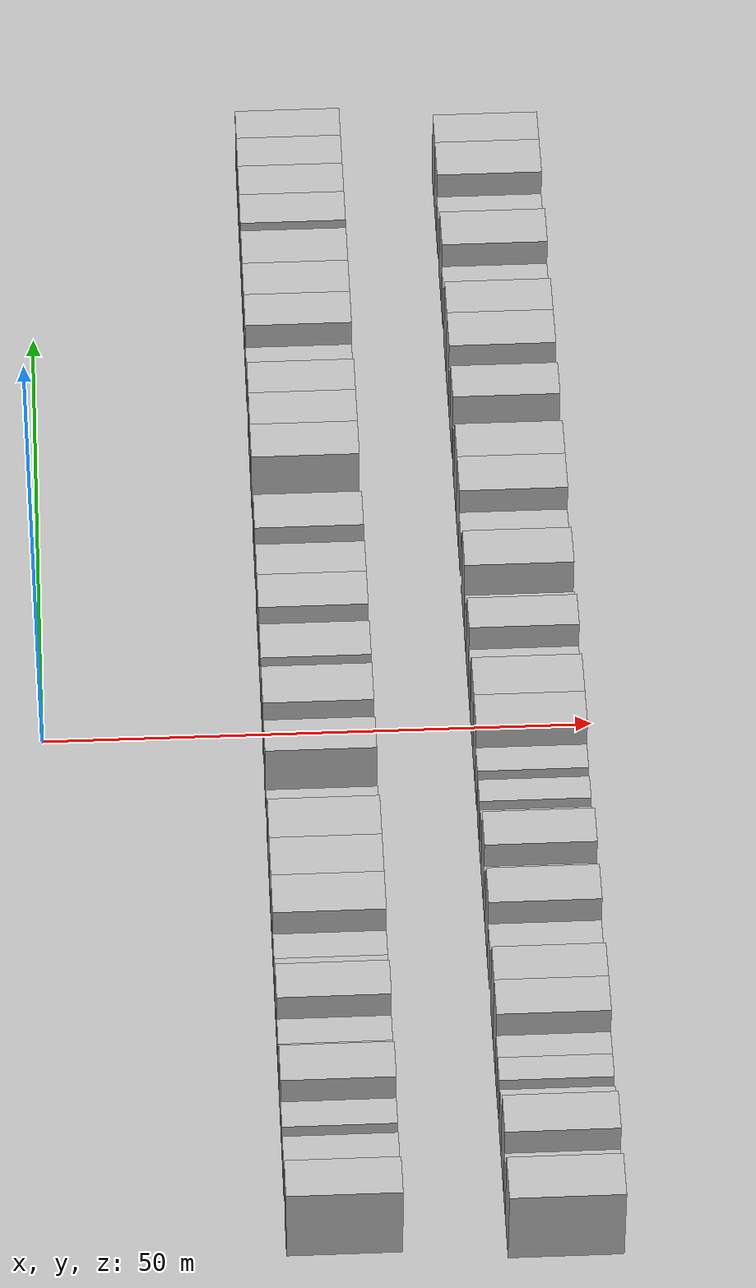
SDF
<sdf version="1.6">
 <world name="default">
  <include><name>ground_plane_1</name><uri>model://HANNAS_ground_plane</uri></include>
  <include>
   <name>ground_plane_2</name>
   <uri>model://HANNAS_ground_plane</uri>
   <pose>100 0 0  0 0 0</pose>
  </include>
  <model name="building_33">
   <static>1</static>
   <pose>25.0000 -57.2095 0 0.000000 0.000000 0.000000</pose>
   <link name="link">
    <pose>0 0 4.50 0 0 0</pose>
    <collision name="collision"><geometry><box><size>10.0000 3.8478 9.0000</size></box></geometry></collision>
    <visual name="visual">
     <cast_shadows>0</cast_shadows>
     <geometry><box><size>10.0000 3.8478 9.0000</size></box></geometry>
     <material>
      <script>
       <uri>model://HANNAS_wall/materials/scripts</uri>
       <uri>model://HANNAS_wall/materials/textures</uri>
       <name>vrc/HANNAS_wall</name>
      </script>
     </material>
    </visual>
   </link>
  </model>
  <model name="building_34">
   <static>1</static>
   <pose>25.0000 -51.8586 0 0.000000 0.000000 0.000000</pose>
   <link name="link">
    <pose>0 0 3.00 0 0 0</pose>
    <collision name="collision"><geometry><box><size>10.0000 2.8540 6.0000</size></box></geometry></collision>
    <visual name="visual">
     <cast_shadows>0</cast_shadows>
     <geometry><box><size>10.0000 2.8540 6.0000</size></box></geometry>
     <material>
      <script>
       <uri>model://HANNAS_wall/materials/scripts</uri>
       <uri>model://HANNAS_wall/materials/textures</uri>
       <name>vrc/HANNAS_wall</name>
      </script>
     </material>
    </visual>
   </link>
  </model>
  <model name="building_35">
   <static>1</static>
   <pose>25.0000 -48.0575 0 0.000000 0.000000 0.000000</pose>
   <link name="link">
    <pose>0 0 3.00 0 0 0</pose>
    <collision name="collision"><geometry><box><size>10.0000 2.7484 6.0000</size></box></geometry></collision>
    <visual name="visual">
     <cast_shadows>0</cast_shadows>
     <geometry><box><size>10.0000 2.7484 6.0000</size></box></geometry>
     <material>
      <script>
       <uri>model://HANNAS_wall/materials/scripts</uri>
       <uri>model://HANNAS_wall/materials/textures</uri>
       <name>vrc/HANNAS_wall</name>
      </script>
     </material>
    </visual>
   </link>
  </model>
  <model name="building_36">
   <static>1</static>
   <pose>25.0000 -44.7523 0 0.000000 0.000000 0.000000</pose>
   <link name="link">
    <pose>0 0 4.50 0 0 0</pose>
    <collision name="collision"><geometry><box><size>10.0000 3.8620 9.0000</size></box></geometry></collision>
    <visual name="visual">
     <cast_shadows>0</cast_shadows>
     <geometry><box><size>10.0000 3.8620 9.0000</size></box></geometry>
     <material>
      <script>
       <uri>model://HANNAS_wall/materials/scripts</uri>
       <uri>model://HANNAS_wall/materials/textures</uri>
       <name>vrc/HANNAS_wall</name>
      </script>
     </material>
    </visual>
   </link>
  </model>
  <model name="building_37">
   <static>1</static>
   <pose>25.0000 -41.5908 0 0.000000 0.000000 0.000000</pose>
   <link name="link">
    <pose>0 0 3.00 0 0 0</pose>
    <collision name="collision"><geometry><box><size>10.0000 2.4609 6.0000</size></box></geometry></collision>
    <visual name="visual">
     <cast_shadows>0</cast_shadows>
     <geometry><box><size>10.0000 2.4609 6.0000</size></box></geometry>
     <material>
      <script>
       <uri>model://HANNAS_wall/materials/scripts</uri>
       <uri>model://HANNAS_wall/materials/textures</uri>
       <name>vrc/HANNAS_wall</name>
      </script>
     </material>
    </visual>
   </link>
  </model>
  <model name="building_38">
   <static>1</static>
   <pose>25.0000 -38.9807 0 0.000000 0.000000 0.000000</pose>
   <link name="link">
    <pose>0 0 3.00 0 0 0</pose>
    <collision name="collision"><geometry><box><size>10.0000 2.7594 6.0000</size></box></geometry></collision>
    <visual name="visual">
     <cast_shadows>0</cast_shadows>
     <geometry><box><size>10.0000 2.7594 6.0000</size></box></geometry>
     <material>
      <script>
       <uri>model://HANNAS_wall/materials/scripts</uri>
       <uri>model://HANNAS_wall/materials/textures</uri>
       <name>vrc/HANNAS_wall</name>
      </script>
     </material>
    </visual>
   </link>
  </model>
  <model name="building_39">
   <static>1</static>
   <pose>25.0000 -35.7096 0 0.000000 0.000000 0.000000</pose>
   <link name="link">
    <pose>0 0 4.50 0 0 0</pose>
    <collision name="collision"><geometry><box><size>10.0000 3.7827 9.0000</size></box></geometry></collision>
    <visual name="visual">
     <cast_shadows>0</cast_shadows>
     <geometry><box><size>10.0000 3.7827 9.0000</size></box></geometry>
     <material>
      <script>
       <uri>model://HANNAS_wall/materials/scripts</uri>
       <uri>model://HANNAS_wall/materials/textures</uri>
       <name>vrc/HANNAS_wall</name>
      </script>
     </material>
    </visual>
   </link>
  </model>
  <model name="building_40">
   <static>1</static>
   <pose>25.0000 -32.3342 0 0.000000 0.000000 0.000000</pose>
   <link name="link">
    <pose>0 0 3.00 0 0 0</pose>
    <collision name="collision"><geometry><box><size>10.0000 2.9682 6.0000</size></box></geometry></collision>
    <visual name="visual">
     <cast_shadows>0</cast_shadows>
     <geometry><box><size>10.0000 2.9682 6.0000</size></box></geometry>
     <material>
      <script>
       <uri>model://HANNAS_wall/materials/scripts</uri>
       <uri>model://HANNAS_wall/materials/textures</uri>
       <name>vrc/HANNAS_wall</name>
      </script>
     </material>
    </visual>
   </link>
  </model>
  <model name="building_41">
   <static>1</static>
   <pose>25.0000 -29.4740 0 0.000000 0.000000 0.000000</pose>
   <link name="link">
    <pose>0 0 3.00 0 0 0</pose>
    <collision name="collision"><geometry><box><size>10.0000 2.7522 6.0000</size></box></geometry></collision>
    <visual name="visual">
     <cast_shadows>0</cast_shadows>
     <geometry><box><size>10.0000 2.7522 6.0000</size></box></geometry>
     <material>
      <script>
       <uri>model://HANNAS_wall/materials/scripts</uri>
       <uri>model://HANNAS_wall/materials/textures</uri>
       <name>vrc/HANNAS_wall</name>
      </script>
     </material>
    </visual>
   </link>
  </model>
  <model name="building_42">
   <static>1</static>
   <pose>25.0000 -25.9594 0 0.000000 0.000000 0.000000</pose>
   <link name="link">
    <pose>0 0 4.50 0 0 0</pose>
    <collision name="collision"><geometry><box><size>10.0000 4.2771 9.0000</size></box></geometry></collision>
    <visual name="visual">
     <cast_shadows>0</cast_shadows>
     <geometry><box><size>10.0000 4.2771 9.0000</size></box></geometry>
     <material>
      <script>
       <uri>model://HANNAS_wall/materials/scripts</uri>
       <uri>model://HANNAS_wall/materials/textures</uri>
       <name>vrc/HANNAS_wall</name>
      </script>
     </material>
    </visual>
   </link>
  </model>
  <model name="building_43">
   <static>1</static>
   <pose>25.0000 -21.6875 0 0.000000 0.000000 0.000000</pose>
   <link name="link">
    <pose>0 0 4.50 0 0 0</pose>
    <collision name="collision"><geometry><box><size>10.0000 4.2667 9.0000</size></box></geometry></collision>
    <visual name="visual">
     <cast_shadows>0</cast_shadows>
     <geometry><box><size>10.0000 4.2667 9.0000</size></box></geometry>
     <material>
      <script>
       <uri>model://HANNAS_wall/materials/scripts</uri>
       <uri>model://HANNAS_wall/materials/textures</uri>
       <name>vrc/HANNAS_wall</name>
      </script>
     </material>
    </visual>
   </link>
  </model>
  <model name="building_44">
   <static>1</static>
   <pose>25.0000 -17.3307 0 0.000000 0.000000 0.000000</pose>
   <link name="link">
    <pose>0 0 4.50 0 0 0</pose>
    <collision name="collision"><geometry><box><size>10.0000 4.4470 9.0000</size></box></geometry></collision>
    <visual name="visual">
     <cast_shadows>0</cast_shadows>
     <geometry><box><size>10.0000 4.4470 9.0000</size></box></geometry>
     <material>
      <script>
       <uri>model://HANNAS_wall/materials/scripts</uri>
       <uri>model://HANNAS_wall/materials/textures</uri>
       <name>vrc/HANNAS_wall</name>
      </script>
     </material>
    </visual>
   </link>
  </model>
  <model name="building_45">
   <static>1</static>
   <pose>25.0000 -12.8297 0 0.000000 0.000000 0.000000</pose>
   <link name="link">
    <pose>0 0 3.00 0 0 0</pose>
    <collision name="collision"><geometry><box><size>10.0000 2.5550 6.0000</size></box></geometry></collision>
    <visual name="visual">
     <cast_shadows>0</cast_shadows>
     <geometry><box><size>10.0000 2.5550 6.0000</size></box></geometry>
     <material>
      <script>
       <uri>model://HANNAS_wall/materials/scripts</uri>
       <uri>model://HANNAS_wall/materials/textures</uri>
       <name>vrc/HANNAS_wall</name>
      </script>
     </material>
    </visual>
   </link>
  </model>
  <model name="building_46">
   <static>1</static>
   <pose>25.0000 -7.7306 0 0.000000 0.000000 0.000000</pose>
   <link name="link">
    <pose>0 0 4.50 0 0 0</pose>
    <collision name="collision"><geometry><box><size>10.0000 3.6432 9.0000</size></box></geometry></collision>
    <visual name="visual">
     <cast_shadows>0</cast_shadows>
     <geometry><box><size>10.0000 3.6432 9.0000</size></box></geometry>
     <material>
      <script>
       <uri>model://HANNAS_wall/materials/scripts</uri>
       <uri>model://HANNAS_wall/materials/textures</uri>
       <name>vrc/HANNAS_wall</name>
      </script>
     </material>
    </visual>
   </link>
  </model>
  <model name="building_47">
   <static>1</static>
   <pose>25.0000 -1.7272 0 0.000000 0.000000 0.000000</pose>
   <link name="link">
    <pose>0 0 4.50 0 0 0</pose>
    <collision name="collision"><geometry><box><size>10.0000 4.3636 9.0000</size></box></geometry></collision>
    <visual name="visual">
     <cast_shadows>0</cast_shadows>
     <geometry><box><size>10.0000 4.3636 9.0000</size></box></geometry>
     <material>
      <script>
       <uri>model://HANNAS_wall/materials/scripts</uri>
       <uri>model://HANNAS_wall/materials/textures</uri>
       <name>vrc/HANNAS_wall</name>
      </script>
     </material>
    </visual>
   </link>
  </model>
  <model name="building_48">
   <static>1</static>
   <pose>25.0000 3.4851 0 0.000000 0.000000 0.000000</pose>
   <link name="link">
    <pose>0 0 4.50 0 0 0</pose>
    <collision name="collision"><geometry><box><size>10.0000 4.0612 9.0000</size></box></geometry></collision>
    <visual name="visual">
     <cast_shadows>0</cast_shadows>
     <geometry><box><size>10.0000 4.0612 9.0000</size></box></geometry>
     <material>
      <script>
       <uri>model://HANNAS_wall/materials/scripts</uri>
       <uri>model://HANNAS_wall/materials/textures</uri>
       <name>vrc/HANNAS_wall</name>
      </script>
     </material>
    </visual>
   </link>
  </model>
  <model name="building_49">
   <static>1</static>
   <pose>25.0000 9.5124 0 0.000000 0.000000 0.000000</pose>
   <link name="link">
    <pose>0 0 4.50 0 0 0</pose>
    <collision name="collision"><geometry><box><size>10.0000 3.9933 9.0000</size></box></geometry></collision>
    <visual name="visual">
     <cast_shadows>0</cast_shadows>
     <geometry><box><size>10.0000 3.9933 9.0000</size></box></geometry>
     <material>
      <script>
       <uri>model://HANNAS_wall/materials/scripts</uri>
       <uri>model://HANNAS_wall/materials/textures</uri>
       <name>vrc/HANNAS_wall</name>
      </script>
     </material>
    </visual>
   </link>
  </model>
  <model name="building_50">
   <static>1</static>
   <pose>25.0000 13.3479 0 0.000000 0.000000 0.000000</pose>
   <link name="link">
    <pose>0 0 4.50 0 0 0</pose>
    <collision name="collision"><geometry><box><size>10.0000 3.6777 9.0000</size></box></geometry></collision>
    <visual name="visual">
     <cast_shadows>0</cast_shadows>
     <geometry><box><size>10.0000 3.6777 9.0000</size></box></geometry>
     <material>
      <script>
       <uri>model://HANNAS_wall/materials/scripts</uri>
       <uri>model://HANNAS_wall/materials/textures</uri>
       <name>vrc/HANNAS_wall</name>
      </script>
     </material>
    </visual>
   </link>
  </model>
  <model name="building_51">
   <static>1</static>
   <pose>25.0000 19.2608 0 0.000000 0.000000 0.000000</pose>
   <link name="link">
    <pose>0 0 4.50 0 0 0</pose>
    <collision name="collision"><geometry><box><size>10.0000 4.1482 9.0000</size></box></geometry></collision>
    <visual name="visual">
     <cast_shadows>0</cast_shadows>
     <geometry><box><size>10.0000 4.1482 9.0000</size></box></geometry>
     <material>
      <script>
       <uri>model://HANNAS_wall/materials/scripts</uri>
       <uri>model://HANNAS_wall/materials/textures</uri>
       <name>vrc/HANNAS_wall</name>
      </script>
     </material>
    </visual>
   </link>
  </model>
  <model name="building_52">
   <static>1</static>
   <pose>25.0000 22.6609 0 0.000000 0.000000 0.000000</pose>
   <link name="link">
    <pose>0 0 3.00 0 0 0</pose>
    <collision name="collision"><geometry><box><size>10.0000 2.6520 6.0000</size></box></geometry></collision>
    <visual name="visual">
     <cast_shadows>0</cast_shadows>
     <geometry><box><size>10.0000 2.6520 6.0000</size></box></geometry>
     <material>
      <script>
       <uri>model://HANNAS_wall/materials/scripts</uri>
       <uri>model://HANNAS_wall/materials/textures</uri>
       <name>vrc/HANNAS_wall</name>
      </script>
     </material>
    </visual>
   </link>
  </model>
  <model name="building_53">
   <static>1</static>
   <pose>25.0000 28.0506 0 0.000000 0.000000 0.000000</pose>
   <link name="link">
    <pose>0 0 4.50 0 0 0</pose>
    <collision name="collision"><geometry><box><size>10.0000 4.1274 9.0000</size></box></geometry></collision>
    <visual name="visual">
     <cast_shadows>0</cast_shadows>
     <geometry><box><size>10.0000 4.1274 9.0000</size></box></geometry>
     <material>
      <script>
       <uri>model://HANNAS_wall/materials/scripts</uri>
       <uri>model://HANNAS_wall/materials/textures</uri>
       <name>vrc/HANNAS_wall</name>
      </script>
     </material>
    </visual>
   </link>
  </model>
  <model name="building_54">
   <static>1</static>
   <pose>25.0000 32.1045 0 0.000000 0.000000 0.000000</pose>
   <link name="link">
    <pose>0 0 4.50 0 0 0</pose>
    <collision name="collision"><geometry><box><size>10.0000 3.9804 9.0000</size></box></geometry></collision>
    <visual name="visual">
     <cast_shadows>0</cast_shadows>
     <geometry><box><size>10.0000 3.9804 9.0000</size></box></geometry>
     <material>
      <script>
       <uri>model://HANNAS_wall/materials/scripts</uri>
       <uri>model://HANNAS_wall/materials/textures</uri>
       <name>vrc/HANNAS_wall</name>
      </script>
     </material>
    </visual>
   </link>
  </model>
  <model name="building_55">
   <static>1</static>
   <pose>25.0000 36.0378 0 0.000000 0.000000 0.000000</pose>
   <link name="link">
    <pose>0 0 4.50 0 0 0</pose>
    <collision name="collision"><geometry><box><size>10.0000 3.8861 9.0000</size></box></geometry></collision>
    <visual name="visual">
     <cast_shadows>0</cast_shadows>
     <geometry><box><size>10.0000 3.8861 9.0000</size></box></geometry>
     <material>
      <script>
       <uri>model://HANNAS_wall/materials/scripts</uri>
       <uri>model://HANNAS_wall/materials/textures</uri>
       <name>vrc/HANNAS_wall</name>
      </script>
     </material>
    </visual>
   </link>
  </model>
  <model name="building_56">
   <static>1</static>
   <pose>25.0000 41.3286 0 0.000000 0.000000 0.000000</pose>
   <link name="link">
    <pose>0 0 3.00 0 0 0</pose>
    <collision name="collision"><geometry><box><size>10.0000 2.6954 6.0000</size></box></geometry></collision>
    <visual name="visual">
     <cast_shadows>0</cast_shadows>
     <geometry><box><size>10.0000 2.6954 6.0000</size></box></geometry>
     <material>
      <script>
       <uri>model://HANNAS_wall/materials/scripts</uri>
       <uri>model://HANNAS_wall/materials/textures</uri>
       <name>vrc/HANNAS_wall</name>
      </script>
     </material>
    </visual>
   </link>
  </model>
  <model name="building_57">
   <static>1</static>
   <pose>25.0000 44.6884 0 0.000000 0.000000 0.000000</pose>
   <link name="link">
    <pose>0 0 4.50 0 0 0</pose>
    <collision name="collision"><geometry><box><size>10.0000 4.0244 9.0000</size></box></geometry></collision>
    <visual name="visual">
     <cast_shadows>0</cast_shadows>
     <geometry><box><size>10.0000 4.0244 9.0000</size></box></geometry>
     <material>
      <script>
       <uri>model://HANNAS_wall/materials/scripts</uri>
       <uri>model://HANNAS_wall/materials/textures</uri>
       <name>vrc/HANNAS_wall</name>
      </script>
     </material>
    </visual>
   </link>
  </model>
  <model name="building_58">
   <static>1</static>
   <pose>25.0000 48.7374 0 0.000000 0.000000 0.000000</pose>
   <link name="link">
    <pose>0 0 4.50 0 0 0</pose>
    <collision name="collision"><geometry><box><size>10.0000 4.0735 9.0000</size></box></geometry></collision>
    <visual name="visual">
     <cast_shadows>0</cast_shadows>
     <geometry><box><size>10.0000 4.0735 9.0000</size></box></geometry>
     <material>
      <script>
       <uri>model://HANNAS_wall/materials/scripts</uri>
       <uri>model://HANNAS_wall/materials/textures</uri>
       <name>vrc/HANNAS_wall</name>
      </script>
     </material>
    </visual>
   </link>
  </model>
  <model name="building_59">
   <static>1</static>
   <pose>25.0000 52.9052 0 0.000000 0.000000 0.000000</pose>
   <link name="link">
    <pose>0 0 4.50 0 0 0</pose>
    <collision name="collision"><geometry><box><size>10.0000 4.2622 9.0000</size></box></geometry></collision>
    <visual name="visual">
     <cast_shadows>0</cast_shadows>
     <geometry><box><size>10.0000 4.2622 9.0000</size></box></geometry>
     <material>
      <script>
       <uri>model://HANNAS_wall/materials/scripts</uri>
       <uri>model://HANNAS_wall/materials/textures</uri>
       <name>vrc/HANNAS_wall</name>
      </script>
     </material>
    </visual>
   </link>
  </model>
  <model name="building_60">
   <static>1</static>
   <pose>25.0000 57.9360 0 0.000000 0.000000 0.000000</pose>
   <link name="link">
    <pose>0 0 4.50 0 0 0</pose>
    <collision name="collision"><geometry><box><size>10.0000 3.7993 9.0000</size></box></geometry></collision>
    <visual name="visual">
     <cast_shadows>0</cast_shadows>
     <geometry><box><size>10.0000 3.7993 9.0000</size></box></geometry>
     <material>
      <script>
       <uri>model://HANNAS_wall/materials/scripts</uri>
       <uri>model://HANNAS_wall/materials/textures</uri>
       <name>vrc/HANNAS_wall</name>
      </script>
     </material>
    </visual>
   </link>
  </model>
  <model name="building_61">
   <static>1</static>
   <pose>25.0000 61.7317 0 0.000000 0.000000 0.000000</pose>
   <link name="link">
    <pose>0 0 4.50 0 0 0</pose>
    <collision name="collision"><geometry><box><size>10.0000 3.7921 9.0000</size></box></geometry></collision>
    <visual name="visual">
     <cast_shadows>0</cast_shadows>
     <geometry><box><size>10.0000 3.7921 9.0000</size></box></geometry>
     <material>
      <script>
       <uri>model://HANNAS_wall/materials/scripts</uri>
       <uri>model://HANNAS_wall/materials/textures</uri>
       <name>vrc/HANNAS_wall</name>
      </script>
     </material>
    </visual>
   </link>
  </model>
  <model name="building_62">
   <static>1</static>
   <pose>25.0000 65.5084 0 0.000000 0.000000 0.000000</pose>
   <link name="link">
    <pose>0 0 4.50 0 0 0</pose>
    <collision name="collision"><geometry><box><size>10.0000 3.7613 9.0000</size></box></geometry></collision>
    <visual name="visual">
     <cast_shadows>0</cast_shadows>
     <geometry><box><size>10.0000 3.7613 9.0000</size></box></geometry>
     <material>
      <script>
       <uri>model://HANNAS_wall/materials/scripts</uri>
       <uri>model://HANNAS_wall/materials/textures</uri>
       <name>vrc/HANNAS_wall</name>
      </script>
     </material>
    </visual>
   </link>
  </model>
  <model name="building_63">
   <static>1</static>
   <pose>25.0000 69.2058 0 0.000000 0.000000 0.000000</pose>
   <link name="link">
    <pose>0 0 4.50 0 0 0</pose>
    <collision name="collision"><geometry><box><size>10.0000 3.6336 9.0000</size></box></geometry></collision>
    <visual name="visual">
     <cast_shadows>0</cast_shadows>
     <geometry><box><size>10.0000 3.6336 9.0000</size></box></geometry>
     <material>
      <script>
       <uri>model://HANNAS_wall/materials/scripts</uri>
       <uri>model://HANNAS_wall/materials/textures</uri>
       <name>vrc/HANNAS_wall</name>
      </script>
     </material>
    </visual>
   </link>
  </model>
  <model name="building_131">
   <static>1</static>
   <pose>44.0000 -57.9713 0 0.000000 0.000000 0.000000</pose>
   <link name="link">
    <pose>0 0 4.50 0 0 0</pose>
    <collision name="collision"><geometry><box><size>10.0000 4.3976 9.0000</size></box></geometry></collision>
    <visual name="visual">
     <cast_shadows>0</cast_shadows>
     <geometry><box><size>10.0000 4.3976 9.0000</size></box></geometry>
     <material>
      <script>
       <uri>model://HANNAS_wall/materials/scripts</uri>
       <uri>model://HANNAS_wall/materials/textures</uri>
       <name>vrc/HANNAS_wall</name>
      </script>
     </material>
    </visual>
   </link>
  </model>
  <model name="building_132">
   <static>1</static>
   <pose>44.0000 -54.4283 0 0.000000 0.000000 0.000000</pose>
   <link name="link">
    <pose>0 0 3.00 0 0 0</pose>
    <collision name="collision"><geometry><box><size>10.0000 2.6883 6.0000</size></box></geometry></collision>
    <visual name="visual">
     <cast_shadows>0</cast_shadows>
     <geometry><box><size>10.0000 2.6883 6.0000</size></box></geometry>
     <material>
      <script>
       <uri>model://HANNAS_wall/materials/scripts</uri>
       <uri>model://HANNAS_wall/materials/textures</uri>
       <name>vrc/HANNAS_wall</name>
      </script>
     </material>
    </visual>
   </link>
  </model>
  <model name="building_133">
   <static>1</static>
   <pose>44.0000 -51.0852 0 0.000000 0.000000 0.000000</pose>
   <link name="link">
    <pose>0 0 4.50 0 0 0</pose>
    <collision name="collision"><geometry><box><size>10.0000 3.9979 9.0000</size></box></geometry></collision>
    <visual name="visual">
     <cast_shadows>0</cast_shadows>
     <geometry><box><size>10.0000 3.9979 9.0000</size></box></geometry>
     <material>
      <script>
       <uri>model://HANNAS_wall/materials/scripts</uri>
       <uri>model://HANNAS_wall/materials/textures</uri>
       <name>vrc/HANNAS_wall</name>
      </script>
     </material>
    </visual>
   </link>
  </model>
  <model name="building_134">
   <static>1</static>
   <pose>44.0000 -47.6366 0 0.000000 0.000000 0.000000</pose>
   <link name="link">
    <pose>0 0 3.00 0 0 0</pose>
    <collision name="collision"><geometry><box><size>10.0000 2.8993 6.0000</size></box></geometry></collision>
    <visual name="visual">
     <cast_shadows>0</cast_shadows>
     <geometry><box><size>10.0000 2.8993 6.0000</size></box></geometry>
     <material>
      <script>
       <uri>model://HANNAS_wall/materials/scripts</uri>
       <uri>model://HANNAS_wall/materials/textures</uri>
       <name>vrc/HANNAS_wall</name>
      </script>
     </material>
    </visual>
   </link>
  </model>
  <model name="building_135">
   <static>1</static>
   <pose>44.0000 -43.9305 0 0.000000 0.000000 0.000000</pose>
   <link name="link">
    <pose>0 0 3.00 0 0 0</pose>
    <collision name="collision"><geometry><box><size>10.0000 2.5129 6.0000</size></box></geometry></collision>
    <visual name="visual">
     <cast_shadows>0</cast_shadows>
     <geometry><box><size>10.0000 2.5129 6.0000</size></box></geometry>
     <material>
      <script>
       <uri>model://HANNAS_wall/materials/scripts</uri>
       <uri>model://HANNAS_wall/materials/textures</uri>
       <name>vrc/HANNAS_wall</name>
      </script>
     </material>
    </visual>
   </link>
  </model>
  <model name="building_136">
   <static>1</static>
   <pose>44.0000 -41.4650 0 0.000000 0.000000 0.000000</pose>
   <link name="link">
    <pose>0 0 3.00 0 0 0</pose>
    <collision name="collision"><geometry><box><size>10.0000 2.4181 6.0000</size></box></geometry></collision>
    <visual name="visual">
     <cast_shadows>0</cast_shadows>
     <geometry><box><size>10.0000 2.4181 6.0000</size></box></geometry>
     <material>
      <script>
       <uri>model://HANNAS_wall/materials/scripts</uri>
       <uri>model://HANNAS_wall/materials/textures</uri>
       <name>vrc/HANNAS_wall</name>
      </script>
     </material>
    </visual>
   </link>
  </model>
  <model name="building_137">
   <static>1</static>
   <pose>44.0000 -38.3403 0 0.000000 0.000000 0.000000</pose>
   <link name="link">
    <pose>0 0 4.50 0 0 0</pose>
    <collision name="collision"><geometry><box><size>10.0000 3.8313 9.0000</size></box></geometry></collision>
    <visual name="visual">
     <cast_shadows>0</cast_shadows>
     <geometry><box><size>10.0000 3.8313 9.0000</size></box></geometry>
     <material>
      <script>
       <uri>model://HANNAS_wall/materials/scripts</uri>
       <uri>model://HANNAS_wall/materials/textures</uri>
       <name>vrc/HANNAS_wall</name>
      </script>
     </material>
    </visual>
   </link>
  </model>
  <model name="building_138">
   <static>1</static>
   <pose>44.0000 -34.5845 0 0.000000 0.000000 0.000000</pose>
   <link name="link">
    <pose>0 0 4.50 0 0 0</pose>
    <collision name="collision"><geometry><box><size>10.0000 3.6804 9.0000</size></box></geometry></collision>
    <visual name="visual">
     <cast_shadows>0</cast_shadows>
     <geometry><box><size>10.0000 3.6804 9.0000</size></box></geometry>
     <material>
      <script>
       <uri>model://HANNAS_wall/materials/scripts</uri>
       <uri>model://HANNAS_wall/materials/textures</uri>
       <name>vrc/HANNAS_wall</name>
      </script>
     </material>
    </visual>
   </link>
  </model>
  <model name="building_139">
   <static>1</static>
   <pose>44.0000 -29.2632 0 0.000000 0.000000 0.000000</pose>
   <link name="link">
    <pose>0 0 3.00 0 0 0</pose>
    <collision name="collision"><geometry><box><size>10.0000 2.9622 6.0000</size></box></geometry></collision>
    <visual name="visual">
     <cast_shadows>0</cast_shadows>
     <geometry><box><size>10.0000 2.9622 6.0000</size></box></geometry>
     <material>
      <script>
       <uri>model://HANNAS_wall/materials/scripts</uri>
       <uri>model://HANNAS_wall/materials/textures</uri>
       <name>vrc/HANNAS_wall</name>
      </script>
     </material>
    </visual>
   </link>
  </model>
  <model name="building_140">
   <static>1</static>
   <pose>44.0000 -25.8125 0 0.000000 0.000000 0.000000</pose>
   <link name="link">
    <pose>0 0 4.50 0 0 0</pose>
    <collision name="collision"><geometry><box><size>10.0000 3.9393 9.0000</size></box></geometry></collision>
    <visual name="visual">
     <cast_shadows>0</cast_shadows>
     <geometry><box><size>10.0000 3.9393 9.0000</size></box></geometry>
     <material>
      <script>
       <uri>model://HANNAS_wall/materials/scripts</uri>
       <uri>model://HANNAS_wall/materials/textures</uri>
       <name>vrc/HANNAS_wall</name>
      </script>
     </material>
    </visual>
   </link>
  </model>
  <model name="building_141">
   <static>1</static>
   <pose>44.0000 -22.5436 0 0.000000 0.000000 0.000000</pose>
   <link name="link">
    <pose>0 0 3.00 0 0 0</pose>
    <collision name="collision"><geometry><box><size>10.0000 2.5984 6.0000</size></box></geometry></collision>
    <visual name="visual">
     <cast_shadows>0</cast_shadows>
     <geometry><box><size>10.0000 2.5984 6.0000</size></box></geometry>
     <material>
      <script>
       <uri>model://HANNAS_wall/materials/scripts</uri>
       <uri>model://HANNAS_wall/materials/textures</uri>
       <name>vrc/HANNAS_wall</name>
      </script>
     </material>
    </visual>
   </link>
  </model>
  <model name="building_142">
   <static>1</static>
   <pose>44.0000 -19.3194 0 0.000000 0.000000 0.000000</pose>
   <link name="link">
    <pose>0 0 4.50 0 0 0</pose>
    <collision name="collision"><geometry><box><size>10.0000 3.8500 9.0000</size></box></geometry></collision>
    <visual name="visual">
     <cast_shadows>0</cast_shadows>
     <geometry><box><size>10.0000 3.8500 9.0000</size></box></geometry>
     <material>
      <script>
       <uri>model://HANNAS_wall/materials/scripts</uri>
       <uri>model://HANNAS_wall/materials/textures</uri>
       <name>vrc/HANNAS_wall</name>
      </script>
     </material>
    </visual>
   </link>
  </model>
  <model name="building_143">
   <static>1</static>
   <pose>44.0000 -16.0669 0 0.000000 0.000000 0.000000</pose>
   <link name="link">
    <pose>0 0 3.00 0 0 0</pose>
    <collision name="collision"><geometry><box><size>10.0000 2.6548 6.0000</size></box></geometry></collision>
    <visual name="visual">
     <cast_shadows>0</cast_shadows>
     <geometry><box><size>10.0000 2.6548 6.0000</size></box></geometry>
     <material>
      <script>
       <uri>model://HANNAS_wall/materials/scripts</uri>
       <uri>model://HANNAS_wall/materials/textures</uri>
       <name>vrc/HANNAS_wall</name>
      </script>
     </material>
    </visual>
   </link>
  </model>
  <model name="building_144">
   <static>1</static>
   <pose>44.0000 -12.4775 0 0.000000 0.000000 0.000000</pose>
   <link name="link">
    <pose>0 0 3.00 0 0 0</pose>
    <collision name="collision"><geometry><box><size>10.0000 2.5241 6.0000</size></box></geometry></collision>
    <visual name="visual">
     <cast_shadows>0</cast_shadows>
     <geometry><box><size>10.0000 2.5241 6.0000</size></box></geometry>
     <material>
      <script>
       <uri>model://HANNAS_wall/materials/scripts</uri>
       <uri>model://HANNAS_wall/materials/textures</uri>
       <name>vrc/HANNAS_wall</name>
      </script>
     </material>
    </visual>
   </link>
  </model>
  <model name="building_145">
   <static>1</static>
   <pose>44.0000 -8.8394 0 0.000000 0.000000 0.000000</pose>
   <link name="link">
    <pose>0 0 3.00 0 0 0</pose>
    <collision name="collision"><geometry><box><size>10.0000 2.7520 6.0000</size></box></geometry></collision>
    <visual name="visual">
     <cast_shadows>0</cast_shadows>
     <geometry><box><size>10.0000 2.7520 6.0000</size></box></geometry>
     <material>
      <script>
       <uri>model://HANNAS_wall/materials/scripts</uri>
       <uri>model://HANNAS_wall/materials/textures</uri>
       <name>vrc/HANNAS_wall</name>
      </script>
     </material>
    </visual>
   </link>
  </model>
  <model name="building_146">
   <static>1</static>
   <pose>44.0000 -5.6095 0 0.000000 0.000000 0.000000</pose>
   <link name="link">
    <pose>0 0 4.50 0 0 0</pose>
    <collision name="collision"><geometry><box><size>10.0000 3.7079 9.0000</size></box></geometry></collision>
    <visual name="visual">
     <cast_shadows>0</cast_shadows>
     <geometry><box><size>10.0000 3.7079 9.0000</size></box></geometry>
     <material>
      <script>
       <uri>model://HANNAS_wall/materials/scripts</uri>
       <uri>model://HANNAS_wall/materials/textures</uri>
       <name>vrc/HANNAS_wall</name>
      </script>
     </material>
    </visual>
   </link>
  </model>
  <model name="building_147">
   <static>1</static>
   <pose>44.0000 -1.5355 0 0.000000 0.000000 0.000000</pose>
   <link name="link">
    <pose>0 0 4.50 0 0 0</pose>
    <collision name="collision"><geometry><box><size>10.0000 4.4401 9.0000</size></box></geometry></collision>
    <visual name="visual">
     <cast_shadows>0</cast_shadows>
     <geometry><box><size>10.0000 4.4401 9.0000</size></box></geometry>
     <material>
      <script>
       <uri>model://HANNAS_wall/materials/scripts</uri>
       <uri>model://HANNAS_wall/materials/textures</uri>
       <name>vrc/HANNAS_wall</name>
      </script>
     </material>
    </visual>
   </link>
  </model>
  <model name="building_148">
   <static>1</static>
   <pose>44.0000 2.9581 0 0.000000 0.000000 0.000000</pose>
   <link name="link">
    <pose>0 0 3.00 0 0 0</pose>
    <collision name="collision"><geometry><box><size>10.0000 2.5470 6.0000</size></box></geometry></collision>
    <visual name="visual">
     <cast_shadows>0</cast_shadows>
     <geometry><box><size>10.0000 2.5470 6.0000</size></box></geometry>
     <material>
      <script>
       <uri>model://HANNAS_wall/materials/scripts</uri>
       <uri>model://HANNAS_wall/materials/textures</uri>
       <name>vrc/HANNAS_wall</name>
      </script>
     </material>
    </visual>
   </link>
  </model>
  <model name="building_149">
   <static>1</static>
   <pose>44.0000 6.0361 0 0.000000 0.000000 0.000000</pose>
   <link name="link">
    <pose>0 0 4.50 0 0 0</pose>
    <collision name="collision"><geometry><box><size>10.0000 3.6091 9.0000</size></box></geometry></collision>
    <visual name="visual">
     <cast_shadows>0</cast_shadows>
     <geometry><box><size>10.0000 3.6091 9.0000</size></box></geometry>
     <material>
      <script>
       <uri>model://HANNAS_wall/materials/scripts</uri>
       <uri>model://HANNAS_wall/materials/textures</uri>
       <name>vrc/HANNAS_wall</name>
      </script>
     </material>
    </visual>
   </link>
  </model>
  <model name="building_150">
   <static>1</static>
   <pose>44.0000 9.3107 0 0.000000 0.000000 0.000000</pose>
   <link name="link">
    <pose>0 0 3.00 0 0 0</pose>
    <collision name="collision"><geometry><box><size>10.0000 2.9400 6.0000</size></box></geometry></collision>
    <visual name="visual">
     <cast_shadows>0</cast_shadows>
     <geometry><box><size>10.0000 2.9400 6.0000</size></box></geometry>
     <material>
      <script>
       <uri>model://HANNAS_wall/materials/scripts</uri>
       <uri>model://HANNAS_wall/materials/textures</uri>
       <name>vrc/HANNAS_wall</name>
      </script>
     </material>
    </visual>
   </link>
  </model>
  <model name="building_151">
   <static>1</static>
   <pose>44.0000 13.9106 0 0.000000 0.000000 0.000000</pose>
   <link name="link">
    <pose>0 0 4.50 0 0 0</pose>
    <collision name="collision"><geometry><box><size>10.0000 4.2597 9.0000</size></box></geometry></collision>
    <visual name="visual">
     <cast_shadows>0</cast_shadows>
     <geometry><box><size>10.0000 4.2597 9.0000</size></box></geometry>
     <material>
      <script>
       <uri>model://HANNAS_wall/materials/scripts</uri>
       <uri>model://HANNAS_wall/materials/textures</uri>
       <name>vrc/HANNAS_wall</name>
      </script>
     </material>
    </visual>
   </link>
  </model>
  <model name="building_152">
   <static>1</static>
   <pose>44.0000 19.5027 0 0.000000 0.000000 0.000000</pose>
   <link name="link">
    <pose>0 0 3.00 0 0 0</pose>
    <collision name="collision"><geometry><box><size>10.0000 2.9244 6.0000</size></box></geometry></collision>
    <visual name="visual">
     <cast_shadows>0</cast_shadows>
     <geometry><box><size>10.0000 2.9244 6.0000</size></box></geometry>
     <material>
      <script>
       <uri>model://HANNAS_wall/materials/scripts</uri>
       <uri>model://HANNAS_wall/materials/textures</uri>
       <name>vrc/HANNAS_wall</name>
      </script>
     </material>
    </visual>
   </link>
  </model>
  <model name="building_153">
   <static>1</static>
   <pose>44.0000 23.0951 0 0.000000 0.000000 0.000000</pose>
   <link name="link">
    <pose>0 0 4.50 0 0 0</pose>
    <collision name="collision"><geometry><box><size>10.0000 4.2604 9.0000</size></box></geometry></collision>
    <visual name="visual">
     <cast_shadows>0</cast_shadows>
     <geometry><box><size>10.0000 4.2604 9.0000</size></box></geometry>
     <material>
      <script>
       <uri>model://HANNAS_wall/materials/scripts</uri>
       <uri>model://HANNAS_wall/materials/textures</uri>
       <name>vrc/HANNAS_wall</name>
      </script>
     </material>
    </visual>
   </link>
  </model>
  <model name="building_154">
   <static>1</static>
   <pose>44.0000 27.2782 0 0.000000 0.000000 0.000000</pose>
   <link name="link">
    <pose>0 0 4.50 0 0 0</pose>
    <collision name="collision"><geometry><box><size>10.0000 4.1059 9.0000</size></box></geometry></collision>
    <visual name="visual">
     <cast_shadows>0</cast_shadows>
     <geometry><box><size>10.0000 4.1059 9.0000</size></box></geometry>
     <material>
      <script>
       <uri>model://HANNAS_wall/materials/scripts</uri>
       <uri>model://HANNAS_wall/materials/textures</uri>
       <name>vrc/HANNAS_wall</name>
      </script>
     </material>
    </visual>
   </link>
  </model>
  <model name="building_155">
   <static>1</static>
   <pose>44.0000 30.5352 0 0.000000 0.000000 0.000000</pose>
   <link name="link">
    <pose>0 0 3.00 0 0 0</pose>
    <collision name="collision"><geometry><box><size>10.0000 2.4081 6.0000</size></box></geometry></collision>
    <visual name="visual">
     <cast_shadows>0</cast_shadows>
     <geometry><box><size>10.0000 2.4081 6.0000</size></box></geometry>
     <material>
      <script>
       <uri>model://HANNAS_wall/materials/scripts</uri>
       <uri>model://HANNAS_wall/materials/textures</uri>
       <name>vrc/HANNAS_wall</name>
      </script>
     </material>
    </visual>
   </link>
  </model>
  <model name="building_156">
   <static>1</static>
   <pose>44.0000 34.7203 0 0.000000 0.000000 0.000000</pose>
   <link name="link">
    <pose>0 0 4.50 0 0 0</pose>
    <collision name="collision"><geometry><box><size>10.0000 3.9623 9.0000</size></box></geometry></collision>
    <visual name="visual">
     <cast_shadows>0</cast_shadows>
     <geometry><box><size>10.0000 3.9623 9.0000</size></box></geometry>
     <material>
      <script>
       <uri>model://HANNAS_wall/materials/scripts</uri>
       <uri>model://HANNAS_wall/materials/textures</uri>
       <name>vrc/HANNAS_wall</name>
      </script>
     </material>
    </visual>
   </link>
  </model>
  <model name="building_157">
   <static>1</static>
   <pose>44.0000 37.9760 0 0.000000 0.000000 0.000000</pose>
   <link name="link">
    <pose>0 0 3.00 0 0 0</pose>
    <collision name="collision"><geometry><box><size>10.0000 2.5491 6.0000</size></box></geometry></collision>
    <visual name="visual">
     <cast_shadows>0</cast_shadows>
     <geometry><box><size>10.0000 2.5491 6.0000</size></box></geometry>
     <material>
      <script>
       <uri>model://HANNAS_wall/materials/scripts</uri>
       <uri>model://HANNAS_wall/materials/textures</uri>
       <name>vrc/HANNAS_wall</name>
      </script>
     </material>
    </visual>
   </link>
  </model>
  <model name="building_158">
   <static>1</static>
   <pose>44.0000 41.3866 0 0.000000 0.000000 0.000000</pose>
   <link name="link">
    <pose>0 0 4.50 0 0 0</pose>
    <collision name="collision"><geometry><box><size>10.0000 4.2722 9.0000</size></box></geometry></collision>
    <visual name="visual">
     <cast_shadows>0</cast_shadows>
     <geometry><box><size>10.0000 4.2722 9.0000</size></box></geometry>
     <material>
      <script>
       <uri>model://HANNAS_wall/materials/scripts</uri>
       <uri>model://HANNAS_wall/materials/textures</uri>
       <name>vrc/HANNAS_wall</name>
      </script>
     </material>
    </visual>
   </link>
  </model>
  <model name="building_159">
   <static>1</static>
   <pose>44.0000 45.5287 0 0.000000 0.000000 0.000000</pose>
   <link name="link">
    <pose>0 0 4.50 0 0 0</pose>
    <collision name="collision"><geometry><box><size>10.0000 4.0121 9.0000</size></box></geometry></collision>
    <visual name="visual">
     <cast_shadows>0</cast_shadows>
     <geometry><box><size>10.0000 4.0121 9.0000</size></box></geometry>
     <material>
      <script>
       <uri>model://HANNAS_wall/materials/scripts</uri>
       <uri>model://HANNAS_wall/materials/textures</uri>
       <name>vrc/HANNAS_wall</name>
      </script>
     </material>
    </visual>
   </link>
  </model>
  <model name="building_160">
   <static>1</static>
   <pose>44.0000 50.9545 0 0.000000 0.000000 0.000000</pose>
   <link name="link">
    <pose>0 0 3.00 0 0 0</pose>
    <collision name="collision"><geometry><box><size>10.0000 2.8395 6.0000</size></box></geometry></collision>
    <visual name="visual">
     <cast_shadows>0</cast_shadows>
     <geometry><box><size>10.0000 2.8395 6.0000</size></box></geometry>
     <material>
      <script>
       <uri>model://HANNAS_wall/materials/scripts</uri>
       <uri>model://HANNAS_wall/materials/textures</uri>
       <name>vrc/HANNAS_wall</name>
      </script>
     </material>
    </visual>
   </link>
  </model>
  <model name="building_161">
   <static>1</static>
   <pose>44.0000 54.5412 0 0.000000 0.000000 0.000000</pose>
   <link name="link">
    <pose>0 0 4.50 0 0 0</pose>
    <collision name="collision"><geometry><box><size>10.0000 4.3339 9.0000</size></box></geometry></collision>
    <visual name="visual">
     <cast_shadows>0</cast_shadows>
     <geometry><box><size>10.0000 4.3339 9.0000</size></box></geometry>
     <material>
      <script>
       <uri>model://HANNAS_wall/materials/scripts</uri>
       <uri>model://HANNAS_wall/materials/textures</uri>
       <name>vrc/HANNAS_wall</name>
      </script>
     </material>
    </visual>
   </link>
  </model>
  <model name="building_162">
   <static>1</static>
   <pose>44.0000 60.1612 0 0.000000 0.000000 0.000000</pose>
   <link name="link">
    <pose>0 0 3.00 0 0 0</pose>
    <collision name="collision"><geometry><box><size>10.0000 2.9062 6.0000</size></box></geometry></collision>
    <visual name="visual">
     <cast_shadows>0</cast_shadows>
     <geometry><box><size>10.0000 2.9062 6.0000</size></box></geometry>
     <material>
      <script>
       <uri>model://HANNAS_wall/materials/scripts</uri>
       <uri>model://HANNAS_wall/materials/textures</uri>
       <name>vrc/HANNAS_wall</name>
      </script>
     </material>
    </visual>
   </link>
  </model>
  <model name="building_163">
   <static>1</static>
   <pose>44.0000 63.8048 0 0.000000 0.000000 0.000000</pose>
   <link name="link">
    <pose>0 0 4.50 0 0 0</pose>
    <collision name="collision"><geometry><box><size>10.0000 4.3810 9.0000</size></box></geometry></collision>
    <visual name="visual">
     <cast_shadows>0</cast_shadows>
     <geometry><box><size>10.0000 4.3810 9.0000</size></box></geometry>
     <material>
      <script>
       <uri>model://HANNAS_wall/materials/scripts</uri>
       <uri>model://HANNAS_wall/materials/textures</uri>
       <name>vrc/HANNAS_wall</name>
      </script>
     </material>
    </visual>
   </link>
  </model>
  <model name="building_164">
   <static>1</static>
   <pose>44.0000 67.8465 0 0.000000 0.000000 0.000000</pose>
   <link name="link">
    <pose>0 0 4.50 0 0 0</pose>
    <collision name="collision"><geometry><box><size>10.0000 3.7024 9.0000</size></box></geometry></collision>
    <visual name="visual">
     <cast_shadows>0</cast_shadows>
     <geometry><box><size>10.0000 3.7024 9.0000</size></box></geometry>
     <material>
      <script>
       <uri>model://HANNAS_wall/materials/scripts</uri>
       <uri>model://HANNAS_wall/materials/textures</uri>
       <name>vrc/HANNAS_wall</name>
      </script>
     </material>
    </visual>
   </link>
  </model>
 </world>
</sdf>
